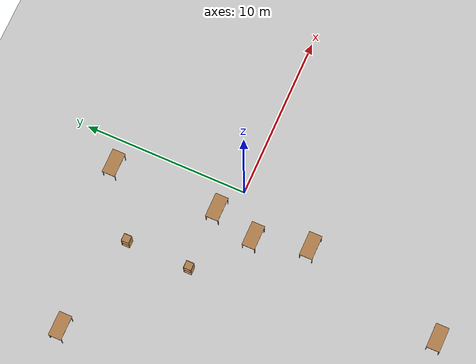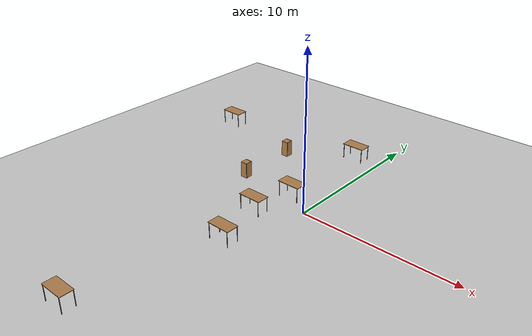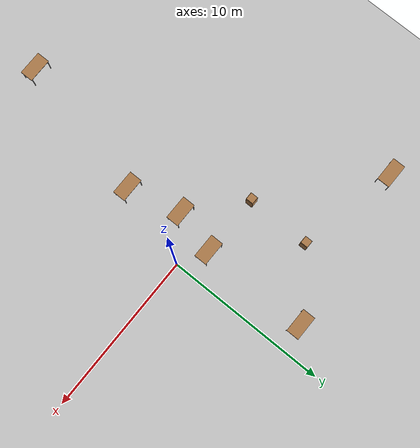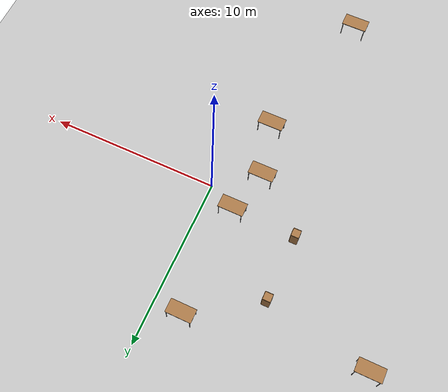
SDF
<sdf version="1.6">
 <world name="default">
  <model name="ground_plane">
   <static>1</static>
   <link name="link">
    <collision name="collision">
     <geometry><plane><normal>0 0 1</normal><size>100 100</size></plane></geometry>
     <surface>
      <contact><collide_bitmask>65535</collide_bitmask></contact>
      <friction><ode><mu>100</mu><mu2>50</mu2></ode></friction>
     </surface>
    </collision>
    <visual name="visual">
     <cast_shadows>0</cast_shadows>
     <geometry><plane><normal>0 0 1</normal><size>100 100</size></plane></geometry>
     <material>
      <script><uri>file://media/materials/scripts/gazebo.material</uri><name>Gazebo/Grey</name></script>
     </material>
    </visual>
   </link>
  </model>
  <model name="table_1">
   <static>1</static>
   <link name="link">
    <collision name="surface">
     <pose>0 0 1 0 -0 0</pose>
     <geometry><box><size>1.5 0.8 0.03</size></box></geometry>
     <surface><friction><ode><mu>0.6</mu><mu2>0.6</mu2></ode></friction></surface>
    </collision>
    <visual name="visual1">
     <pose>0 0 1 0 -0 0</pose>
     <geometry><box><size>1.5 0.8 0.03</size></box></geometry>
     <material>
      <script><uri>file://media/materials/scripts/gazebo.material</uri><name>Gazebo/Wood</name></script>
     </material>
    </visual>
    <collision name="front_left_leg">
     <pose>0.68 0.38 0.5 0 -0 0</pose>
     <geometry><cylinder><radius>0.02</radius><length>1</length></cylinder></geometry>
    </collision>
    <visual name="front_left_leg">
     <pose>0.68 0.38 0.5 0 -0 0</pose>
     <geometry><cylinder><radius>0.02</radius><length>1</length></cylinder></geometry>
     <material>
      <script><uri>file://media/materials/scripts/gazebo.material</uri><name>Gazebo/Grey</name></script>
     </material>
    </visual>
    <collision name="front_right_leg">
     <pose>0.68 -0.38 0.5 0 -0 0</pose>
     <geometry><cylinder><radius>0.02</radius><length>1</length></cylinder></geometry>
    </collision>
    <visual name="front_right_leg">
     <pose>0.68 -0.38 0.5 0 -0 0</pose>
     <geometry><cylinder><radius>0.02</radius><length>1</length></cylinder></geometry>
     <material>
      <script><uri>file://media/materials/scripts/gazebo.material</uri><name>Gazebo/Grey</name></script>
     </material>
    </visual>
    <collision name="back_right_leg">
     <pose>-0.68 -0.38 0.5 0 -0 0</pose>
     <geometry><cylinder><radius>0.02</radius><length>1</length></cylinder></geometry>
    </collision>
    <visual name="back_right_leg">
     <pose>-0.68 -0.38 0.5 0 -0 0</pose>
     <geometry><cylinder><radius>0.02</radius><length>1</length></cylinder></geometry>
     <material>
      <script><uri>file://media/materials/scripts/gazebo.material</uri><name>Gazebo/Grey</name></script>
     </material>
    </visual>
    <collision name="back_left_leg">
     <pose>-0.68 0.38 0.5 0 -0 0</pose>
     <geometry><cylinder><radius>0.02</radius><length>1</length></cylinder></geometry>
    </collision>
    <visual name="back_left_leg">
     <pose>-0.68 0.38 0.5 0 -0 0</pose>
     <geometry><cylinder><radius>0.02</radius><length>1</length></cylinder></geometry>
     <material>
      <script><uri>file://media/materials/scripts/gazebo.material</uri><name>Gazebo/Grey</name></script>
     </material>
    </visual>
   </link>
   <pose>-1.66816 7.51527 0 0 -0 0</pose>
  </model>
  <model name="table_2">
   <static>1</static>
   <link name="link">
    <collision name="surface">
     <pose>0 0 1 0 -0 0</pose>
     <geometry><box><size>1.5 0.8 0.03</size></box></geometry>
     <surface><friction><ode><mu>0.6</mu><mu2>0.6</mu2></ode></friction></surface>
    </collision>
    <visual name="visual1">
     <pose>0 0 1 0 -0 0</pose>
     <geometry><box><size>1.5 0.8 0.03</size></box></geometry>
     <material>
      <script><uri>file://media/materials/scripts/gazebo.material</uri><name>Gazebo/Wood</name></script>
     </material>
    </visual>
    <collision name="front_left_leg">
     <pose>0.68 0.38 0.5 0 -0 0</pose>
     <geometry><cylinder><radius>0.02</radius><length>1</length></cylinder></geometry>
    </collision>
    <visual name="front_left_leg">
     <pose>0.68 0.38 0.5 0 -0 0</pose>
     <geometry><cylinder><radius>0.02</radius><length>1</length></cylinder></geometry>
     <material>
      <script><uri>file://media/materials/scripts/gazebo.material</uri><name>Gazebo/Grey</name></script>
     </material>
    </visual>
    <collision name="front_right_leg">
     <pose>0.68 -0.38 0.5 0 -0 0</pose>
     <geometry><cylinder><radius>0.02</radius><length>1</length></cylinder></geometry>
    </collision>
    <visual name="front_right_leg">
     <pose>0.68 -0.38 0.5 0 -0 0</pose>
     <geometry><cylinder><radius>0.02</radius><length>1</length></cylinder></geometry>
     <material>
      <script><uri>file://media/materials/scripts/gazebo.material</uri><name>Gazebo/Grey</name></script>
     </material>
    </visual>
    <collision name="back_right_leg">
     <pose>-0.68 -0.38 0.5 0 -0 0</pose>
     <geometry><cylinder><radius>0.02</radius><length>1</length></cylinder></geometry>
    </collision>
    <visual name="back_right_leg">
     <pose>-0.68 -0.38 0.5 0 -0 0</pose>
     <geometry><cylinder><radius>0.02</radius><length>1</length></cylinder></geometry>
     <material>
      <script><uri>file://media/materials/scripts/gazebo.material</uri><name>Gazebo/Grey</name></script>
     </material>
    </visual>
    <collision name="back_left_leg">
     <pose>-0.68 0.38 0.5 0 -0 0</pose>
     <geometry><cylinder><radius>0.02</radius><length>1</length></cylinder></geometry>
    </collision>
    <visual name="back_left_leg">
     <pose>-0.68 0.38 0.5 0 -0 0</pose>
     <geometry><cylinder><radius>0.02</radius><length>1</length></cylinder></geometry>
     <material>
      <script><uri>file://media/materials/scripts/gazebo.material</uri><name>Gazebo/Grey</name></script>
     </material>
    </visual>
   </link>
   <pose>-1.69244 0.969496 0 0 -0 0</pose>
  </model>
  <model name="table_3">
   <static>1</static>
   <link name="link">
    <collision name="surface">
     <pose>0 0 1 0 -0 0</pose>
     <geometry><box><size>1.5 0.8 0.03</size></box></geometry>
     <surface><friction><ode><mu>0.6</mu><mu2>0.6</mu2></ode></friction></surface>
    </collision>
    <visual name="visual1">
     <pose>0 0 1 0 -0 0</pose>
     <geometry><box><size>1.5 0.8 0.03</size></box></geometry>
     <material>
      <script><uri>file://media/materials/scripts/gazebo.material</uri><name>Gazebo/Wood</name></script>
     </material>
    </visual>
    <collision name="front_left_leg">
     <pose>0.68 0.38 0.5 0 -0 0</pose>
     <geometry><cylinder><radius>0.02</radius><length>1</length></cylinder></geometry>
    </collision>
    <visual name="front_left_leg">
     <pose>0.68 0.38 0.5 0 -0 0</pose>
     <geometry><cylinder><radius>0.02</radius><length>1</length></cylinder></geometry>
     <material>
      <script><uri>file://media/materials/scripts/gazebo.material</uri><name>Gazebo/Grey</name></script>
     </material>
    </visual>
    <collision name="front_right_leg">
     <pose>0.68 -0.38 0.5 0 -0 0</pose>
     <geometry><cylinder><radius>0.02</radius><length>1</length></cylinder></geometry>
    </collision>
    <visual name="front_right_leg">
     <pose>0.68 -0.38 0.5 0 -0 0</pose>
     <geometry><cylinder><radius>0.02</radius><length>1</length></cylinder></geometry>
     <material>
      <script><uri>file://media/materials/scripts/gazebo.material</uri><name>Gazebo/Grey</name></script>
     </material>
    </visual>
    <collision name="back_right_leg">
     <pose>-0.68 -0.38 0.5 0 -0 0</pose>
     <geometry><cylinder><radius>0.02</radius><length>1</length></cylinder></geometry>
    </collision>
    <visual name="back_right_leg">
     <pose>-0.68 -0.38 0.5 0 -0 0</pose>
     <geometry><cylinder><radius>0.02</radius><length>1</length></cylinder></geometry>
     <material>
      <script><uri>file://media/materials/scripts/gazebo.material</uri><name>Gazebo/Grey</name></script>
     </material>
    </visual>
    <collision name="back_left_leg">
     <pose>-0.68 0.38 0.5 0 -0 0</pose>
     <geometry><cylinder><radius>0.02</radius><length>1</length></cylinder></geometry>
    </collision>
    <visual name="back_left_leg">
     <pose>-0.68 0.38 0.5 0 -0 0</pose>
     <geometry><cylinder><radius>0.02</radius><length>1</length></cylinder></geometry>
     <material>
      <script><uri>file://media/materials/scripts/gazebo.material</uri><name>Gazebo/Grey</name></script>
     </material>
    </visual>
   </link>
   <pose>-3.64398 -13.5315 0 0 -0 0</pose>
  </model>
  <model name="table_4">
   <static>1</static>
   <link name="link">
    <collision name="surface">
     <pose>0 0 1 0 -0 0</pose>
     <geometry><box><size>1.5 0.8 0.03</size></box></geometry>
     <surface><friction><ode><mu>0.6</mu><mu2>0.6</mu2></ode></friction></surface>
    </collision>
    <visual name="visual1">
     <pose>0 0 1 0 -0 0</pose>
     <geometry><box><size>1.5 0.8 0.03</size></box></geometry>
     <material>
      <script><uri>file://media/materials/scripts/gazebo.material</uri><name>Gazebo/Wood</name></script>
     </material>
    </visual>
    <collision name="front_left_leg">
     <pose>0.68 0.38 0.5 0 -0 0</pose>
     <geometry><cylinder><radius>0.02</radius><length>1</length></cylinder></geometry>
    </collision>
    <visual name="front_left_leg">
     <pose>0.68 0.38 0.5 0 -0 0</pose>
     <geometry><cylinder><radius>0.02</radius><length>1</length></cylinder></geometry>
     <material>
      <script><uri>file://media/materials/scripts/gazebo.material</uri><name>Gazebo/Grey</name></script>
     </material>
    </visual>
    <collision name="front_right_leg">
     <pose>0.68 -0.38 0.5 0 -0 0</pose>
     <geometry><cylinder><radius>0.02</radius><length>1</length></cylinder></geometry>
    </collision>
    <visual name="front_right_leg">
     <pose>0.68 -0.38 0.5 0 -0 0</pose>
     <geometry><cylinder><radius>0.02</radius><length>1</length></cylinder></geometry>
     <material>
      <script><uri>file://media/materials/scripts/gazebo.material</uri><name>Gazebo/Grey</name></script>
     </material>
    </visual>
    <collision name="back_right_leg">
     <pose>-0.68 -0.38 0.5 0 -0 0</pose>
     <geometry><cylinder><radius>0.02</radius><length>1</length></cylinder></geometry>
    </collision>
    <visual name="back_right_leg">
     <pose>-0.68 -0.38 0.5 0 -0 0</pose>
     <geometry><cylinder><radius>0.02</radius><length>1</length></cylinder></geometry>
     <material>
      <script><uri>file://media/materials/scripts/gazebo.material</uri><name>Gazebo/Grey</name></script>
     </material>
    </visual>
    <collision name="back_left_leg">
     <pose>-0.68 0.38 0.5 0 -0 0</pose>
     <geometry><cylinder><radius>0.02</radius><length>1</length></cylinder></geometry>
    </collision>
    <visual name="back_left_leg">
     <pose>-0.68 0.38 0.5 0 -0 0</pose>
     <geometry><cylinder><radius>0.02</radius><length>1</length></cylinder></geometry>
     <material>
      <script><uri>file://media/materials/scripts/gazebo.material</uri><name>Gazebo/Grey</name></script>
     </material>
    </visual>
   </link>
   <pose>-11.6052 6.21744 0 0 -0 0</pose>
  </model>
  <model name="cabinet_2">
   <static>1</static>
   <link name="cabinet_bottom_plate">
    <inertial>
     <pose>0 0 -1 0 -0 0</pose>
     <inertia><ixx>2.05</ixx><ixy>0</ixy><ixz>0</ixz><iyy>2.05</iyy><iyz>0</iyz><izz>2.05</izz></inertia>
     <mass>25</mass>
    </inertial>
    <collision name="cabinet_bottom_plate_geom">
     <pose>0 0 0.01 0 -0 0</pose>
     <geometry><box><size>0.45 0.45 0.02</size></box></geometry>
    </collision>
    <visual name="cabinet_bottom_plate_geom_visual">
     <pose>0 0 0.01 0 -0 0</pose>
     <geometry><box><size>0.45 0.45 0.02</size></box></geometry>
     <material>
      <script><uri>file://media/materials/scripts/gazebo.material</uri><name>Gazebo/Wood</name></script>
     </material>
    </visual>
    <collision name="cabinet_bottom_plate_geom_cabinet_back_plate">
     <pose>0.235 0 0.51 0 -0 0</pose>
     <geometry><box><size>0.02 0.45 1.02</size></box></geometry>
    </collision>
    <visual name="cabinet_bottom_plate_geom_cabinet_back_plate_visual">
     <pose>0.235 0 0.51 0 -0 0</pose>
     <geometry><box><size>0.02 0.45 1.02</size></box></geometry>
     <material>
      <script><uri>file://media/materials/scripts/gazebo.material</uri><name>Gazebo/Wood</name></script>
     </material>
    </visual>
    <collision name="cabinet_bottom_plate_geom_cabinet_left_plate">
     <pose>0 0.235 0.51 0 -0 0</pose>
     <geometry><box><size>0.45 0.02 1.02</size></box></geometry>
    </collision>
    <visual name="cabinet_bottom_plate_geom_cabinet_left_plate_visual">
     <pose>0 0.235 0.51 0 -0 0</pose>
     <geometry><box><size>0.45 0.02 1.02</size></box></geometry>
     <material>
      <script><uri>file://media/materials/scripts/gazebo.material</uri><name>Gazebo/Wood</name></script>
     </material>
    </visual>
    <collision name="cabinet_bottom_plate_geom_cabinet_middle_plate">
     <pose>0 0 0.51 0 -0 0</pose>
     <geometry><box><size>0.45 0.45 0.02</size></box></geometry>
    </collision>
    <visual name="cabinet_bottom_plate_geom_cabinet_middle_plate_visual">
     <pose>0 0 0.51 0 -0 0</pose>
     <geometry><box><size>0.45 0.45 0.02</size></box></geometry>
     <material>
      <script><uri>file://media/materials/scripts/gazebo.material</uri><name>Gazebo/Wood</name></script>
     </material>
    </visual>
    <collision name="cabinet_bottom_plate_geom_cabinet_right_plate">
     <pose>0 -0.235 0.51 0 -0 0</pose>
     <geometry><box><size>0.45 0.02 1.02</size></box></geometry>
    </collision>
    <visual name="cabinet_bottom_plate_geom_cabinet_right_plate_visual">
     <pose>0 -0.235 0.51 0 -0 0</pose>
     <geometry><box><size>0.45 0.02 1.02</size></box></geometry>
     <material>
      <script><uri>file://media/materials/scripts/gazebo.material</uri><name>Gazebo/Wood</name></script>
     </material>
    </visual>
    <collision name="cabinet_bottom_plate_geom_cabinet_top_plate">
     <pose>0 0 1.01 0 -0 0</pose>
     <geometry><box><size>0.45 0.45 0.02</size></box></geometry>
    </collision>
    <visual name="cabinet_bottom_plate_geom_cabinet_top_plate_visual">
     <pose>0 0 1.01 0 -0 0</pose>
     <geometry><box><size>0.45 0.45 0.02</size></box></geometry>
     <material>
      <script><uri>file://media/materials/scripts/gazebo.material</uri><name>Gazebo/Wood</name></script>
     </material>
    </visual>
   </link>
   <pose>-5.4993 1.01905 0 0 -0 0</pose>
  </model>
  <model name="cabinet_3">
   <static>1</static>
   <link name="cabinet_bottom_plate">
    <inertial>
     <pose>0 0 -1 0 -0 0</pose>
     <inertia><ixx>2.05</ixx><ixy>0</ixy><ixz>0</ixz><iyy>2.05</iyy><iyz>0</iyz><izz>2.05</izz></inertia>
     <mass>25</mass>
    </inertial>
    <collision name="cabinet_bottom_plate_geom">
     <pose>0 0 0.01 0 -0 0</pose>
     <geometry><box><size>0.45 0.45 0.02</size></box></geometry>
    </collision>
    <visual name="cabinet_bottom_plate_geom_visual">
     <pose>0 0 0.01 0 -0 0</pose>
     <geometry><box><size>0.45 0.45 0.02</size></box></geometry>
     <material>
      <script><uri>file://media/materials/scripts/gazebo.material</uri><name>Gazebo/Wood</name></script>
     </material>
    </visual>
    <collision name="cabinet_bottom_plate_geom_cabinet_back_plate">
     <pose>0.235 0 0.51 0 -0 0</pose>
     <geometry><box><size>0.02 0.45 1.02</size></box></geometry>
    </collision>
    <visual name="cabinet_bottom_plate_geom_cabinet_back_plate_visual">
     <pose>0.235 0 0.51 0 -0 0</pose>
     <geometry><box><size>0.02 0.45 1.02</size></box></geometry>
     <material>
      <script><uri>file://media/materials/scripts/gazebo.material</uri><name>Gazebo/Wood</name></script>
     </material>
    </visual>
    <collision name="cabinet_bottom_plate_geom_cabinet_left_plate">
     <pose>0 0.235 0.51 0 -0 0</pose>
     <geometry><box><size>0.45 0.02 1.02</size></box></geometry>
    </collision>
    <visual name="cabinet_bottom_plate_geom_cabinet_left_plate_visual">
     <pose>0 0.235 0.51 0 -0 0</pose>
     <geometry><box><size>0.45 0.02 1.02</size></box></geometry>
     <material>
      <script><uri>file://media/materials/scripts/gazebo.material</uri><name>Gazebo/Wood</name></script>
     </material>
    </visual>
    <collision name="cabinet_bottom_plate_geom_cabinet_middle_plate">
     <pose>0 0 0.51 0 -0 0</pose>
     <geometry><box><size>0.45 0.45 0.02</size></box></geometry>
    </collision>
    <visual name="cabinet_bottom_plate_geom_cabinet_middle_plate_visual">
     <pose>0 0 0.51 0 -0 0</pose>
     <geometry><box><size>0.45 0.45 0.02</size></box></geometry>
     <material>
      <script><uri>file://media/materials/scripts/gazebo.material</uri><name>Gazebo/Wood</name></script>
     </material>
    </visual>
    <collision name="cabinet_bottom_plate_geom_cabinet_right_plate">
     <pose>0 -0.235 0.51 0 -0 0</pose>
     <geometry><box><size>0.45 0.02 1.02</size></box></geometry>
    </collision>
    <visual name="cabinet_bottom_plate_geom_cabinet_right_plate_visual">
     <pose>0 -0.235 0.51 0 -0 0</pose>
     <geometry><box><size>0.45 0.02 1.02</size></box></geometry>
     <material>
      <script><uri>file://media/materials/scripts/gazebo.material</uri><name>Gazebo/Wood</name></script>
     </material>
    </visual>
    <collision name="cabinet_bottom_plate_geom_cabinet_top_plate">
     <pose>0 0 1.01 0 -0 0</pose>
     <geometry><box><size>0.45 0.45 0.02</size></box></geometry>
    </collision>
    <visual name="cabinet_bottom_plate_geom_cabinet_top_plate_visual">
     <pose>0 0 1.01 0 -0 0</pose>
     <geometry><box><size>0.45 0.45 0.02</size></box></geometry>
     <material>
      <script><uri>file://media/materials/scripts/gazebo.material</uri><name>Gazebo/Wood</name></script>
     </material>
    </visual>
   </link>
   <pose>-5.48057 4.93153 0 0 -0 0</pose>
  </model>
  <model name="table_5">
   <static>1</static>
   <link name="link">
    <collision name="surface">
     <pose>0 0 1 0 -0 0</pose>
     <geometry><box><size>1.5 0.8 0.03</size></box></geometry>
     <surface><friction><ode><mu>0.6</mu><mu2>0.6</mu2></ode></friction></surface>
    </collision>
    <visual name="visual1">
     <pose>0 0 1 0 -0 0</pose>
     <geometry><box><size>1.5 0.8 0.03</size></box></geometry>
     <material>
      <script><uri>file://media/materials/scripts/gazebo.material</uri><name>Gazebo/Wood</name></script>
     </material>
    </visual>
    <collision name="front_left_leg">
     <pose>0.68 0.38 0.5 0 -0 0</pose>
     <geometry><cylinder><radius>0.02</radius><length>1</length></cylinder></geometry>
    </collision>
    <visual name="front_left_leg">
     <pose>0.68 0.38 0.5 0 -0 0</pose>
     <geometry><cylinder><radius>0.02</radius><length>1</length></cylinder></geometry>
     <material>
      <script><uri>file://media/materials/scripts/gazebo.material</uri><name>Gazebo/Grey</name></script>
     </material>
    </visual>
    <collision name="front_right_leg">
     <pose>0.68 -0.38 0.5 0 -0 0</pose>
     <geometry><cylinder><radius>0.02</radius><length>1</length></cylinder></geometry>
    </collision>
    <visual name="front_right_leg">
     <pose>0.68 -0.38 0.5 0 -0 0</pose>
     <geometry><cylinder><radius>0.02</radius><length>1</length></cylinder></geometry>
     <material>
      <script><uri>file://media/materials/scripts/gazebo.material</uri><name>Gazebo/Grey</name></script>
     </material>
    </visual>
    <collision name="back_right_leg">
     <pose>-0.68 -0.38 0.5 0 -0 0</pose>
     <geometry><cylinder><radius>0.02</radius><length>1</length></cylinder></geometry>
    </collision>
    <visual name="back_right_leg">
     <pose>-0.68 -0.38 0.5 0 -0 0</pose>
     <geometry><cylinder><radius>0.02</radius><length>1</length></cylinder></geometry>
     <material>
      <script><uri>file://media/materials/scripts/gazebo.material</uri><name>Gazebo/Grey</name></script>
     </material>
    </visual>
    <collision name="back_left_leg">
     <pose>-0.68 0.38 0.5 0 -0 0</pose>
     <geometry><cylinder><radius>0.02</radius><length>1</length></cylinder></geometry>
    </collision>
    <visual name="back_left_leg">
     <pose>-0.68 0.38 0.5 0 -0 0</pose>
     <geometry><cylinder><radius>0.02</radius><length>1</length></cylinder></geometry>
     <material>
      <script><uri>file://media/materials/scripts/gazebo.material</uri><name>Gazebo/Grey</name></script>
     </material>
    </visual>
   </link>
   <pose>-2.38817 -1.63072 0 0 -0 0</pose>
  </model>
  <model name="table_7">
   <static>1</static>
   <link name="link">
    <collision name="surface">
     <pose>0 0 1 0 -0 0</pose>
     <geometry><box><size>1.5 0.8 0.03</size></box></geometry>
     <surface><friction><ode><mu>0.6</mu><mu2>0.6</mu2></ode></friction></surface>
    </collision>
    <visual name="visual1">
     <pose>0 0 1 0 -0 0</pose>
     <geometry><box><size>1.5 0.8 0.03</size></box></geometry>
     <material>
      <script><uri>file://media/materials/scripts/gazebo.material</uri><name>Gazebo/Wood</name></script>
     </material>
    </visual>
    <collision name="front_left_leg">
     <pose>0.68 0.38 0.5 0 -0 0</pose>
     <geometry><cylinder><radius>0.02</radius><length>1</length></cylinder></geometry>
    </collision>
    <visual name="front_left_leg">
     <pose>0.68 0.38 0.5 0 -0 0</pose>
     <geometry><cylinder><radius>0.02</radius><length>1</length></cylinder></geometry>
     <material>
      <script><uri>file://media/materials/scripts/gazebo.material</uri><name>Gazebo/Grey</name></script>
     </material>
    </visual>
    <collision name="front_right_leg">
     <pose>0.68 -0.38 0.5 0 -0 0</pose>
     <geometry><cylinder><radius>0.02</radius><length>1</length></cylinder></geometry>
    </collision>
    <visual name="front_right_leg">
     <pose>0.68 -0.38 0.5 0 -0 0</pose>
     <geometry><cylinder><radius>0.02</radius><length>1</length></cylinder></geometry>
     <material>
      <script><uri>file://media/materials/scripts/gazebo.material</uri><name>Gazebo/Grey</name></script>
     </material>
    </visual>
    <collision name="back_right_leg">
     <pose>-0.68 -0.38 0.5 0 -0 0</pose>
     <geometry><cylinder><radius>0.02</radius><length>1</length></cylinder></geometry>
    </collision>
    <visual name="back_right_leg">
     <pose>-0.68 -0.38 0.5 0 -0 0</pose>
     <geometry><cylinder><radius>0.02</radius><length>1</length></cylinder></geometry>
     <material>
      <script><uri>file://media/materials/scripts/gazebo.material</uri><name>Gazebo/Grey</name></script>
     </material>
    </visual>
    <collision name="back_left_leg">
     <pose>-0.68 0.38 0.5 0 -0 0</pose>
     <geometry><cylinder><radius>0.02</radius><length>1</length></cylinder></geometry>
    </collision>
    <visual name="back_left_leg">
     <pose>-0.68 0.38 0.5 0 -0 0</pose>
     <geometry><cylinder><radius>0.02</radius><length>1</length></cylinder></geometry>
     <material>
      <script><uri>file://media/materials/scripts/gazebo.material</uri><name>Gazebo/Grey</name></script>
     </material>
    </visual>
   </link>
   <pose>-1.6071 -4.8689 0 0 -0 0</pose>
  </model>
 </world>
</sdf>
